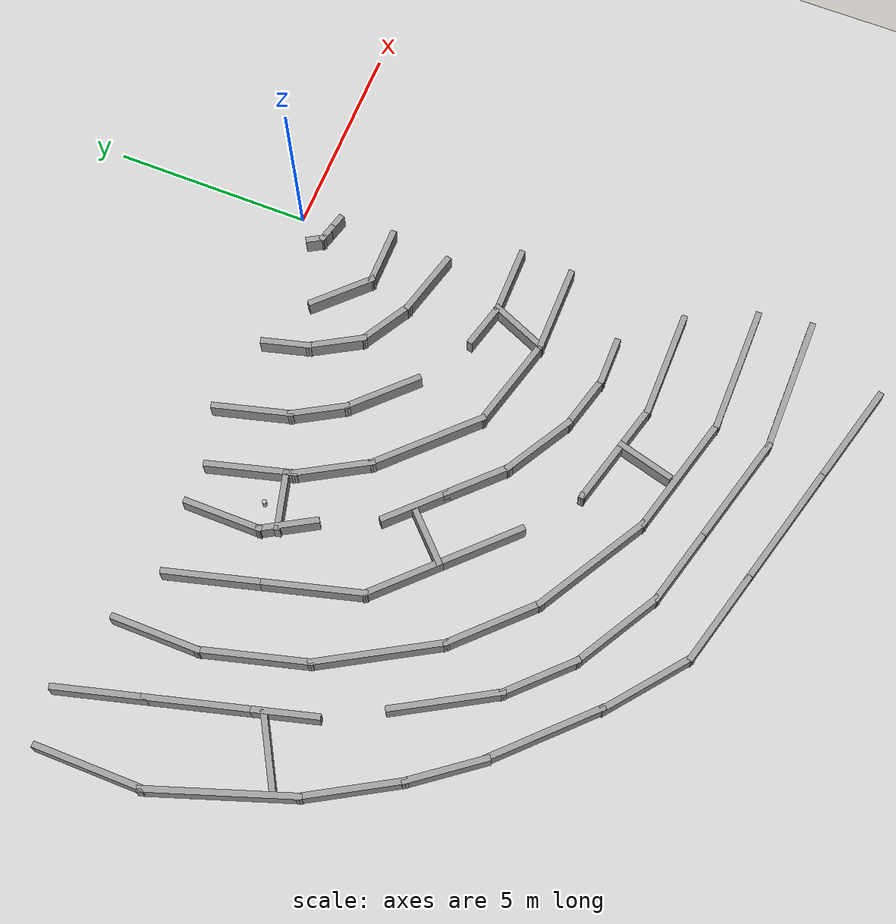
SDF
<sdf version="1.6">
 <world name="default">
  <model name="ground_plane">
   <static>1</static>
   <link name="link">
    <collision name="collision">
     <geometry><plane><normal>0 0 1</normal><size>100 100</size></plane></geometry>
     <surface><friction><ode><mu>100</mu><mu2>50</mu2></ode></friction></surface>
    </collision>
    <visual name="visual">
     <cast_shadows>0</cast_shadows>
     <geometry><plane><normal>0 0 1</normal><size>100 100</size></plane></geometry>
     <material>
      <script><uri>file://media/materials/scripts/gazebo.material</uri><name>Gazebo/Grey</name></script>
     </material>
    </visual>
   </link>
  </model>
  <model name="laby4">
   <pose>-11.3155 -0.151712 0 0 -0 0</pose>
   <link name="Wall_103">
    <collision name="Wall_103_Collision">
     <geometry><box><size>2.25 0.15 0.5</size></box></geometry>
     <pose>0 0 0.25 0 -0 0</pose>
    </collision>
    <visual name="Wall_103_Visual">
     <pose>0 0 0.25 0 -0 0</pose>
     <geometry><box><size>2.25 0.15 0.5</size></box></geometry>
     <material>
      <script><uri>file://media/materials/scripts/gazebo.material</uri><name>Gazebo/Grey</name></script>
      <ambient>1 1 1 1</ambient>
     </material>
    </visual>
    <pose>0.132587 -1.06988 0 0 0 -1.5708</pose>
   </link>
   <link name="Wall_104">
    <collision name="Wall_104_Collision">
     <geometry><box><size>2.75 0.15 0.5</size></box></geometry>
     <pose>0 0 0.25 0 -0 0</pose>
    </collision>
    <visual name="Wall_104_Visual">
     <pose>0 0 0.25 0 -0 0</pose>
     <geometry><box><size>2.75 0.15 0.5</size></box></geometry>
     <material>
      <script><uri>file://media/materials/scripts/gazebo.material</uri><name>Gazebo/Grey</name></script>
      <ambient>1 1 1 1</ambient>
     </material>
    </visual>
    <pose>0.469052 -3.37558 0 0 0 -1.309</pose>
   </link>
   <link name="Wall_106">
    <collision name="Wall_106_Collision">
     <geometry><box><size>3.25 0.15 0.5</size></box></geometry>
     <pose>0 0 0.25 0 -0 0</pose>
    </collision>
    <visual name="Wall_106_Visual">
     <pose>0 0 0.25 0 -0 0</pose>
     <geometry><box><size>3.25 0.15 0.5</size></box></geometry>
     <material>
      <script><uri>file://media/materials/scripts/gazebo.material</uri><name>Gazebo/Grey</name></script>
      <ambient>1 1 1 1</ambient>
     </material>
    </visual>
    <pose>1.58052 -5.97363 0 0 0 -1.0472</pose>
   </link>
   <link name="Wall_107">
    <collision name="Wall_107_Collision">
     <geometry><box><size>2.5 0.15 0.5</size></box></geometry>
     <pose>0 0 0.25 0 -0 0</pose>
    </collision>
    <visual name="Wall_107_Visual">
     <pose>0 0 0.25 0 -0 0</pose>
     <geometry><box><size>2.5 0.15 0.5</size></box></geometry>
     <material>
      <script><uri>file://media/materials/scripts/gazebo.material</uri><name>Gazebo/Grey</name></script>
      <ambient>1 1 1 1</ambient>
     </material>
    </visual>
    <pose>3.18637 -8.14682 0 0 0 -0.785398</pose>
   </link>
   <link name="Wall_108">
    <collision name="Wall_108_Collision">
     <geometry><box><size>3.25 0.15 0.5</size></box></geometry>
     <pose>0 0 0.25 0 -0 0</pose>
    </collision>
    <visual name="Wall_108_Visual">
     <pose>0 0 0.25 0 -0 0</pose>
     <geometry><box><size>3.25 0.15 0.5</size></box></geometry>
     <material>
      <script><uri>file://media/materials/scripts/gazebo.material</uri><name>Gazebo/Grey</name></script>
      <ambient>1 1 1 1</ambient>
     </material>
    </visual>
    <pose>5.35956 -9.75267 0 0 0 -0.523599</pose>
   </link>
   <link name="Wall_109">
    <collision name="Wall_109_Collision">
     <geometry><box><size>3.25 0.15 0.5</size></box></geometry>
     <pose>0 0 0.25 0 -0 0</pose>
    </collision>
    <visual name="Wall_109_Visual">
     <pose>0 0 0.25 0 -0 0</pose>
     <geometry><box><size>3.25 0.15 0.5</size></box></geometry>
     <material>
      <script><uri>file://media/materials/scripts/gazebo.material</uri><name>Gazebo/Grey</name></script>
      <ambient>1 1 1 1</ambient>
     </material>
    </visual>
    <pose>8.19908 -10.9288 0 0 0 -0.261799</pose>
   </link>
   <link name="Wall_110">
    <collision name="Wall_110_Collision">
     <geometry><box><size>3.25 0.15 0.5</size></box></geometry>
     <pose>0 0 0.25 0 -0 0</pose>
    </collision>
    <visual name="Wall_110_Visual">
     <pose>0 0 0.25 0 -0 0</pose>
     <geometry><box><size>3.25 0.15 0.5</size></box></geometry>
     <material>
      <script><uri>file://media/materials/scripts/gazebo.material</uri><name>Gazebo/Grey</name></script>
      <ambient>1 1 1 1</ambient>
     </material>
    </visual>
    <pose>11.2463 -11.33 0 0 -0 0</pose>
   </link>
   <link name="Wall_140">
    <collision name="Wall_140_Collision">
     <geometry><box><size>2.25 0.15 0.5</size></box></geometry>
     <pose>0 0 0.25 0 -0 0</pose>
    </collision>
    <visual name="Wall_140_Visual">
     <pose>0 0 0.25 0 -0 0</pose>
     <geometry><box><size>2.25 0.15 0.5</size></box></geometry>
     <material>
      <script><uri>file://media/materials/scripts/gazebo.material</uri><name>Gazebo/Grey</name></script>
      <ambient>1 1 1 1</ambient>
     </material>
    </visual>
    <pose>4.81018 -7.19725 0 0 -0 2.35619</pose>
   </link>
   <link name="Wall_141">
    <collision name="Wall_141_Collision">
     <geometry><box><size>2 0.15 0.5</size></box></geometry>
     <pose>0 0 0.25 0 -0 0</pose>
    </collision>
    <visual name="Wall_141_Visual">
     <pose>0 0 0.25 0 -0 0</pose>
     <geometry><box><size>2 0.15 0.5</size></box></geometry>
     <material>
      <script><uri>file://media/materials/scripts/gazebo.material</uri><name>Gazebo/Grey</name></script>
      <ambient>1 1 1 1</ambient>
     </material>
    </visual>
    <pose>3.41365 -5.80071 0 0 -0 2.35619</pose>
   </link>
   <link name="Wall_142">
    <collision name="Wall_142_Collision">
     <geometry><box><size>2.5 0.15 0.5</size></box></geometry>
     <pose>0 0 0.25 0 -0 0</pose>
    </collision>
    <visual name="Wall_142_Visual">
     <pose>0 0 0.25 0 -0 0</pose>
     <geometry><box><size>2.5 0.15 0.5</size></box></geometry>
     <material>
      <script><uri>file://media/materials/scripts/gazebo.material</uri><name>Gazebo/Grey</name></script>
      <ambient>1 1 1 1</ambient>
     </material>
    </visual>
    <pose>2.45546 -4.01168 0 0 -0 1.8326</pose>
   </link>
   <link name="Wall_143">
    <collision name="Wall_143_Collision">
     <geometry><box><size>2.5 0.15 0.5</size></box></geometry>
     <pose>0 0 0.25 0 -0 0</pose>
    </collision>
    <visual name="Wall_143_Visual">
     <pose>0 0 0.25 0 -0 0</pose>
     <geometry><box><size>2.5 0.15 0.5</size></box></geometry>
     <material>
      <script><uri>file://media/materials/scripts/gazebo.material</uri><name>Gazebo/Grey</name></script>
      <ambient>1 1 1 1</ambient>
     </material>
    </visual>
    <pose>1.84724 -1.74175 0 0 -0 1.8326</pose>
   </link>
   <link name="Wall_171">
    <collision name="Wall_171_Collision">
     <geometry><box><size>2.75 0.15 0.5</size></box></geometry>
     <pose>0 0 0.25 0 -0 0</pose>
    </collision>
    <visual name="Wall_171_Visual">
     <pose>0 0 0.25 0 -0 0</pose>
     <geometry><box><size>2.75 0.15 0.5</size></box></geometry>
     <material>
      <script><uri>file://media/materials/scripts/gazebo.material</uri><name>Gazebo/Grey</name></script>
      <ambient>1 1 1 1</ambient>
     </material>
    </visual>
    <pose>10.744 -9.67519 0 0 -0 3.14159</pose>
   </link>
   <link name="Wall_172">
    <collision name="Wall_172_Collision">
     <geometry><box><size>1.25 0.15 0.5</size></box></geometry>
     <pose>0 0 0.25 0 -0 0</pose>
    </collision>
    <visual name="Wall_172_Visual">
     <pose>0 0 0.25 0 -0 0</pose>
     <geometry><box><size>1.25 0.15 0.5</size></box></geometry>
     <material>
      <script><uri>file://media/materials/scripts/gazebo.material</uri><name>Gazebo/Grey</name></script>
      <ambient>1 1 1 1</ambient>
     </material>
    </visual>
    <pose>8.91273 -9.53284 0 0 -0 2.87979</pose>
   </link>
   <link name="Wall_173">
    <collision name="Wall_173_Collision">
     <geometry><box><size>1.75 0.15 0.5</size></box></geometry>
     <pose>0 0 0.25 0 -0 0</pose>
    </collision>
    <visual name="Wall_173_Visual">
     <pose>0 0 0.25 0 -0 0</pose>
     <geometry><box><size>1.75 0.15 0.5</size></box></geometry>
     <material>
      <script><uri>file://media/materials/scripts/gazebo.material</uri><name>Gazebo/Grey</name></script>
      <ambient>1 1 1 1</ambient>
     </material>
    </visual>
    <pose>7.60872 -9.18343 0 0 -0 2.87979</pose>
   </link>
   <link name="Wall_174">
    <collision name="Wall_174_Collision">
     <geometry><box><size>0.15 0.15 0.5</size></box></geometry>
     <pose>0 0 0.25 0 -0 0</pose>
    </collision>
    <visual name="Wall_174_Visual">
     <pose>0 0 0.25 0 -0 0</pose>
     <geometry><box><size>0.15 0.15 0.5</size></box></geometry>
     <material>
      <script><uri>file://media/materials/scripts/gazebo.material</uri><name>Gazebo/Grey</name></script>
      <ambient>1 1 1 1</ambient>
     </material>
    </visual>
    <pose>6.83598 -8.97637 0 0 -0 0</pose>
   </link>
   <link name="Wall_176">
    <collision name="Wall_176_Collision">
     <geometry><box><size>1.5 0.15 0.5</size></box></geometry>
     <pose>0 0 0.25 0 -0 0</pose>
    </collision>
    <visual name="Wall_176_Visual">
     <pose>0 0 0.25 0 -0 0</pose>
     <geometry><box><size>1.5 0.15 0.5</size></box></geometry>
     <material>
      <script><uri>file://media/materials/scripts/gazebo.material</uri><name>Gazebo/Grey</name></script>
      <ambient>1 1 1 1</ambient>
     </material>
    </visual>
    <pose>8.20676 -10.0425 0 0 0 -1.8326</pose>
   </link>
   <link name="Wall_205">
    <collision name="Wall_205_Collision">
     <geometry><box><size>2 0.15 0.5</size></box></geometry>
     <pose>0 0 0.25 0 -0 0</pose>
    </collision>
    <visual name="Wall_205_Visual">
     <pose>0 0 0.25 0 -0 0</pose>
     <geometry><box><size>2 0.15 0.5</size></box></geometry>
     <material>
      <script><uri>file://media/materials/scripts/gazebo.material</uri><name>Gazebo/Grey</name></script>
      <ambient>1 1 1 1</ambient>
     </material>
    </visual>
    <pose>3.30115 -1.31346 0 0 0 -1.5708</pose>
   </link>
   <link name="Wall_206">
    <collision name="Wall_206_Collision">
     <geometry><box><size>1.5 0.15 0.5</size></box></geometry>
     <pose>0 0 0.25 0 -0 0</pose>
    </collision>
    <visual name="Wall_206_Visual">
     <pose>0 0 0.25 0 -0 0</pose>
     <geometry><box><size>1.5 0.15 0.5</size></box></geometry>
     <material>
      <script><uri>file://media/materials/scripts/gazebo.material</uri><name>Gazebo/Grey</name></script>
      <ambient>1 1 1 1</ambient>
     </material>
    </visual>
    <pose>3.63865 -2.82302 0 0 0 -1.0472</pose>
   </link>
   <link name="Wall_208">
    <collision name="Wall_208_Collision">
     <geometry><box><size>1.75 0.15 0.5</size></box></geometry>
     <pose>0 0 0.25 0 -0 0</pose>
    </collision>
    <visual name="Wall_208_Visual">
     <pose>0 0 0.25 0 -0 0</pose>
     <geometry><box><size>1.75 0.15 0.5</size></box></geometry>
     <material>
      <script><uri>file://media/materials/scripts/gazebo.material</uri><name>Gazebo/Grey</name></script>
      <ambient>1 1 1 1</ambient>
     </material>
    </visual>
    <pose>5.15602 -5.40121 0 0 0 -0.785398</pose>
   </link>
   <link name="Wall_209">
    <collision name="Wall_209_Collision">
     <geometry><box><size>1.75 0.15 0.5</size></box></geometry>
     <pose>0 0 0.25 0 -0 0</pose>
    </collision>
    <visual name="Wall_209_Visual">
     <pose>0 0 0.25 0 -0 0</pose>
     <geometry><box><size>1.75 0.15 0.5</size></box></geometry>
     <material>
      <script><uri>file://media/materials/scripts/gazebo.material</uri><name>Gazebo/Grey</name></script>
      <ambient>1 1 1 1</ambient>
     </material>
    </visual>
    <pose>6.28739 -6.53258 0 0 0 -0.785398</pose>
   </link>
   <link name="Wall_210">
    <collision name="Wall_210_Collision">
     <geometry><box><size>2 0.15 0.5</size></box></geometry>
     <pose>0 0 0.25 0 -0 0</pose>
    </collision>
    <visual name="Wall_210_Visual">
     <pose>0 0 0.25 0 -0 0</pose>
     <geometry><box><size>2 0.15 0.5</size></box></geometry>
     <material>
      <script><uri>file://media/materials/scripts/gazebo.material</uri><name>Gazebo/Grey</name></script>
      <ambient>1 1 1 1</ambient>
     </material>
    </visual>
    <pose>7.65415 -7.56076 0 0 0 -0.523599</pose>
   </link>
   <link name="Wall_211">
    <collision name="Wall_211_Collision">
     <geometry><box><size>1.5 0.15 0.5</size></box></geometry>
     <pose>0 0 0.25 0 -0 0</pose>
    </collision>
    <visual name="Wall_211_Visual">
     <pose>0 0 0.25 0 -0 0</pose>
     <geometry><box><size>1.5 0.15 0.5</size></box></geometry>
     <material>
      <script><uri>file://media/materials/scripts/gazebo.material</uri><name>Gazebo/Grey</name></script>
      <ambient>1 1 1 1</ambient>
     </material>
    </visual>
    <pose>9.10722 -8.19796 0 0 0 -0.261799</pose>
   </link>
   <link name="Wall_212">
    <collision name="Wall_212_Collision">
     <geometry><box><size>1.25 0.15 0.5</size></box></geometry>
     <pose>0 0 0.25 0 -0 0</pose>
    </collision>
    <visual name="Wall_212_Visual">
     <pose>0 0 0.25 0 -0 0</pose>
     <geometry><box><size>1.25 0.15 0.5</size></box></geometry>
     <material>
      <script><uri>file://media/materials/scripts/gazebo.material</uri><name>Gazebo/Grey</name></script>
      <ambient>1 1 1 1</ambient>
     </material>
    </visual>
    <pose>10.3092 -8.37267 0 0 -0 0</pose>
   </link>
   <link name="Wall_214">
    <collision name="Wall_214_Collision">
     <geometry><box><size>1.5 0.15 0.5</size></box></geometry>
     <pose>0 0 0.25 0 -0 0</pose>
    </collision>
    <visual name="Wall_214_Visual">
     <pose>0 0 0.25 0 -0 0</pose>
     <geometry><box><size>1.5 0.15 0.5</size></box></geometry>
     <material>
      <script><uri>file://media/materials/scripts/gazebo.material</uri><name>Gazebo/Grey</name></script>
      <ambient>1 1 1 1</ambient>
     </material>
    </visual>
    <pose>4.54502 -5.97749 0 0 -0 0.785398</pose>
   </link>
   <link name="Wall_222">
    <collision name="Wall_222_Collision">
     <geometry><box><size>2.25 0.15 0.5</size></box></geometry>
     <pose>0 0 0.25 0 -0 0</pose>
    </collision>
    <visual name="Wall_222_Visual">
     <pose>0 0 0.25 0 -0 0</pose>
     <geometry><box><size>2.25 0.15 0.5</size></box></geometry>
     <material>
      <script><uri>file://media/materials/scripts/gazebo.material</uri><name>Gazebo/Grey</name></script>
      <ambient>1 1 1 1</ambient>
     </material>
    </visual>
    <pose>11.1302 -6.68474 0 0 -0 3.14159</pose>
   </link>
   <link name="Wall_223">
    <collision name="Wall_223_Collision">
     <geometry><box><size>2.5 0.15 0.5</size></box></geometry>
     <pose>0 0 0.25 0 -0 0</pose>
    </collision>
    <visual name="Wall_223_Visual">
     <pose>0 0 0.25 0 -0 0</pose>
     <geometry><box><size>2.5 0.15 0.5</size></box></geometry>
     <material>
      <script><uri>file://media/materials/scripts/gazebo.material</uri><name>Gazebo/Grey</name></script>
      <ambient>1 1 1 1</ambient>
     </material>
    </visual>
    <pose>8.94527 -6.38063 0 0 -0 2.87979</pose>
   </link>
   <link name="Wall_224">
    <collision name="Wall_224_Collision">
     <geometry><box><size>3 0.15 0.5</size></box></geometry>
     <pose>0 0 0.25 0 -0 0</pose>
    </collision>
    <visual name="Wall_224_Visual">
     <pose>0 0 0.25 0 -0 0</pose>
     <geometry><box><size>3 0.15 0.5</size></box></geometry>
     <material>
      <script><uri>file://media/materials/scripts/gazebo.material</uri><name>Gazebo/Grey</name></script>
      <ambient>1 1 1 1</ambient>
     </material>
    </visual>
    <pose>6.80268 -5.06889 0 0 -0 2.35619</pose>
   </link>
   <link name="Wall_225">
    <collision name="Wall_225_Collision">
     <geometry><box><size>2 0.15 0.5</size></box></geometry>
     <pose>0 0 0.25 0 -0 0</pose>
    </collision>
    <visual name="Wall_225_Visual">
     <pose>0 0 0.25 0 -0 0</pose>
     <geometry><box><size>2 0.15 0.5</size></box></geometry>
     <material>
      <script><uri>file://media/materials/scripts/gazebo.material</uri><name>Gazebo/Grey</name></script>
      <ambient>1 1 1 1</ambient>
     </material>
    </visual>
    <pose>5.33256 -3.26019 0 0 -0 2.0944</pose>
   </link>
   <link name="Wall_226">
    <collision name="Wall_226_Collision">
     <geometry><box><size>2.25 0.15 0.5</size></box></geometry>
     <pose>0 0 0.25 0 -0 0</pose>
    </collision>
    <visual name="Wall_226_Visual">
     <pose>0 0 0.25 0 -0 0</pose>
     <geometry><box><size>2.25 0.15 0.5</size></box></geometry>
     <material>
      <script><uri>file://media/materials/scripts/gazebo.material</uri><name>Gazebo/Grey</name></script>
      <ambient>1 1 1 1</ambient>
     </material>
    </visual>
    <pose>4.5983 -1.4449 0 0 -0 1.8326</pose>
   </link>
   <link name="Wall_23">
    <collision name="Wall_23_Collision">
     <geometry><box><size>2.75 0.15 0.5</size></box></geometry>
     <pose>0 0 0.25 0 -0 0</pose>
    </collision>
    <visual name="Wall_23_Visual">
     <pose>0 0 0.25 0 -0 0</pose>
     <geometry><box><size>2.75 0.15 0.5</size></box></geometry>
     <material>
      <script><uri>file://media/materials/scripts/gazebo.material</uri><name>Gazebo/Grey</name></script>
      <ambient>1 1 1 1</ambient>
     </material>
    </visual>
    <pose>10.5983 -14.3724 0 0 -0 2.87979</pose>
   </link>
   <link name="Wall_24">
    <collision name="Wall_24_Collision">
     <geometry><box><size>3.25 0.15 0.5</size></box></geometry>
     <pose>0 0 0.25 0 -0 0</pose>
    </collision>
    <visual name="Wall_24_Visual">
     <pose>0 0 0.25 0 -0 0</pose>
     <geometry><box><size>3.25 0.15 0.5</size></box></geometry>
     <material>
      <script><uri>file://media/materials/scripts/gazebo.material</uri><name>Gazebo/Grey</name></script>
      <ambient>1 1 1 1</ambient>
     </material>
    </visual>
    <pose>7.84544 -13.6347 0 0 -0 2.87979</pose>
   </link>
   <link name="Wall_245">
    <collision name="Wall_245_Collision">
     <geometry><box><size>1.5 0.15 0.5</size></box></geometry>
     <pose>0 0 0.25 0 -0 0</pose>
    </collision>
    <visual name="Wall_245_Visual">
     <pose>0 0 0.25 0 -0 0</pose>
     <geometry><box><size>1.5 0.15 0.5</size></box></geometry>
     <material>
      <script><uri>file://media/materials/scripts/gazebo.material</uri><name>Gazebo/Grey</name></script>
      <ambient>1 1 1 1</ambient>
     </material>
    </visual>
    <pose>4.13833 -2.45282 0 0 -0 0.261799</pose>
   </link>
   <link name="Wall_247">
    <collision name="Wall_247_Collision">
     <geometry><box><size>2 0.15 0.5</size></box></geometry>
     <pose>0 0 0.25 0 -0 0</pose>
    </collision>
    <visual name="Wall_247_Visual">
     <pose>0 0 0.25 0 -0 0</pose>
     <geometry><box><size>2 0.15 0.5</size></box></geometry>
     <material>
      <script><uri>file://media/materials/scripts/gazebo.material</uri><name>Gazebo/Grey</name></script>
      <ambient>1 1 1 1</ambient>
     </material>
    </visual>
    <pose>7.55461 -3.59116 0 0 -0 2.35619</pose>
   </link>
   <link name="Wall_248">
    <collision name="Wall_248_Collision">
     <geometry><box><size>1.5 0.15 0.5</size></box></geometry>
     <pose>0 0 0.25 0 -0 0</pose>
    </collision>
    <visual name="Wall_248_Visual">
     <pose>0 0 0.25 0 -0 0</pose>
     <geometry><box><size>1.5 0.15 0.5</size></box></geometry>
     <material>
      <script><uri>file://media/materials/scripts/gazebo.material</uri><name>Gazebo/Grey</name></script>
      <ambient>1 1 1 1</ambient>
     </material>
    </visual>
    <pose>6.56304 -2.35251 0 0 -0 2.0944</pose>
   </link>
   <link name="Wall_249">
    <collision name="Wall_249_Collision">
     <geometry><box><size>2 0.15 0.5</size></box></geometry>
     <pose>0 0 0.25 0 -0 0</pose>
    </collision>
    <visual name="Wall_249_Visual">
     <pose>0 0 0.25 0 -0 0</pose>
     <geometry><box><size>2 0.15 0.5</size></box></geometry>
     <material>
      <script><uri>file://media/materials/scripts/gazebo.material</uri><name>Gazebo/Grey</name></script>
      <ambient>1 1 1 1</ambient>
     </material>
    </visual>
    <pose>5.98613 -0.874466 0 0 -0 1.8326</pose>
   </link>
   <link name="Wall_25">
    <collision name="Wall_25_Collision">
     <geometry><box><size>2.5 0.15 0.5</size></box></geometry>
     <pose>0 0 0.25 0 -0 0</pose>
    </collision>
    <visual name="Wall_25_Visual">
     <pose>0 0 0.25 0 -0 0</pose>
     <geometry><box><size>2.5 0.15 0.5</size></box></geometry>
     <material>
      <script><uri>file://media/materials/scripts/gazebo.material</uri><name>Gazebo/Grey</name></script>
      <ambient>1 1 1 1</ambient>
     </material>
    </visual>
    <pose>5.2133 -12.9295 0 0 -0 2.87979</pose>
   </link>
   <link name="Wall_26">
    <collision name="Wall_26_Collision">
     <geometry><box><size>2.47717 0.15 0.5</size></box></geometry>
     <pose>0 0 0.25 0 -0 0</pose>
    </collision>
    <visual name="Wall_26_Visual">
     <pose>0 0 0.25 0 -0 0</pose>
     <geometry><box><size>2.47717 0.15 0.5</size></box></geometry>
     <material>
      <script><uri>file://media/materials/scripts/gazebo.material</uri><name>Gazebo/Grey</name></script>
      <ambient>1 1 1 1</ambient>
     </material>
    </visual>
    <pose>3.16591 -11.9033 0 0 -0 2.47212</pose>
   </link>
   <link name="Wall_265">
    <collision name="Wall_265_Collision">
     <geometry><box><size>1.75 0.15 0.5</size></box></geometry>
     <pose>0 0 0.25 0 -0 0</pose>
    </collision>
    <visual name="Wall_265_Visual">
     <pose>0 0 0.25 0 -0 0</pose>
     <geometry><box><size>1.75 0.15 0.5</size></box></geometry>
     <material>
      <script><uri>file://media/materials/scripts/gazebo.material</uri><name>Gazebo/Grey</name></script>
      <ambient>1 1 1 1</ambient>
     </material>
    </visual>
    <pose>11.4468 -5.35996 0 0 -0 3.14159</pose>
   </link>
   <link name="Wall_266">
    <collision name="Wall_266_Collision">
     <geometry><box><size>1.25 0.15 0.5</size></box></geometry>
     <pose>0 0 0.25 0 -0 0</pose>
    </collision>
    <visual name="Wall_266_Visual">
     <pose>0 0 0.25 0 -0 0</pose>
     <geometry><box><size>1.25 0.15 0.5</size></box></geometry>
     <material>
      <script><uri>file://media/materials/scripts/gazebo.material</uri><name>Gazebo/Grey</name></script>
      <ambient>1 1 1 1</ambient>
     </material>
    </visual>
    <pose>10.1156 -5.21761 0 0 -0 2.87979</pose>
   </link>
   <link name="Wall_268">
    <collision name="Wall_268_Collision">
     <geometry><box><size>1.59087 0.15 0.5</size></box></geometry>
     <pose>0 0 0.25 0 -0 0</pose>
    </collision>
    <visual name="Wall_268_Visual">
     <pose>0 0 0.25 0 -0 0</pose>
     <geometry><box><size>1.59087 0.15 0.5</size></box></geometry>
     <material>
      <script><uri>file://media/materials/scripts/gazebo.material</uri><name>Gazebo/Grey</name></script>
      <ambient>1 1 1 1</ambient>
     </material>
    </visual>
    <pose>10.3635 -6.02235 0 0 0 -1.97494</pose>
   </link>
   <link name="Wall_27">
    <collision name="Wall_27_Collision">
     <geometry><box><size>3 0.15 0.5</size></box></geometry>
     <pose>0 0 0.25 0 -0 0</pose>
    </collision>
    <visual name="Wall_27_Visual">
     <pose>0 0 0.25 0 -0 0</pose>
     <geometry><box><size>3 0.15 0.5</size></box></geometry>
     <material>
      <script><uri>file://media/materials/scripts/gazebo.material</uri><name>Gazebo/Grey</name></script>
      <ambient>1 1 1 1</ambient>
     </material>
    </visual>
    <pose>1.24586 -10.1464 0 0 -0 2.35619</pose>
   </link>
   <link name="Wall_271">
    <collision name="Wall_271_Collision">
     <geometry><box><size>1.75 0.15 0.5</size></box></geometry>
     <pose>0 0 0.25 0 -0 0</pose>
    </collision>
    <visual name="Wall_271_Visual">
     <pose>0 0 0.25 0 -0 0</pose>
     <geometry><box><size>1.75 0.15 0.5</size></box></geometry>
     <material>
      <script><uri>file://media/materials/scripts/gazebo.material</uri><name>Gazebo/Grey</name></script>
      <ambient>1 1 1 1</ambient>
     </material>
    </visual>
    <pose>10.6359 -3.50484 0 0 -0 2.87979</pose>
   </link>
   <link name="Wall_272">
    <collision name="Wall_272_Collision">
     <geometry><box><size>1.5 0.15 0.5</size></box></geometry>
     <pose>0 0 0.25 0 -0 0</pose>
    </collision>
    <visual name="Wall_272_Visual">
     <pose>0 0 0.25 0 -0 0</pose>
     <geometry><box><size>1.5 0.15 0.5</size></box></geometry>
     <material>
      <script><uri>file://media/materials/scripts/gazebo.material</uri><name>Gazebo/Grey</name></script>
      <ambient>1 1 1 1</ambient>
     </material>
    </visual>
    <pose>9.27863 -2.96029 0 0 -0 2.61799</pose>
   </link>
   <link name="Wall_273">
    <collision name="Wall_273_Collision">
     <geometry><box><size>1.5 0.15 0.5</size></box></geometry>
     <pose>0 0 0.25 0 -0 0</pose>
    </collision>
    <visual name="Wall_273_Visual">
     <pose>0 0 0.25 0 -0 0</pose>
     <geometry><box><size>1.5 0.15 0.5</size></box></geometry>
     <material>
      <script><uri>file://media/materials/scripts/gazebo.material</uri><name>Gazebo/Grey</name></script>
      <ambient>1 1 1 1</ambient>
     </material>
    </visual>
    <pose>8.35657 -2.03822 0 0 -0 2.0944</pose>
   </link>
   <link name="Wall_274">
    <collision name="Wall_274_Collision">
     <geometry><box><size>1.25 0.15 0.5</size></box></geometry>
     <pose>0 0 0.25 0 -0 0</pose>
    </collision>
    <visual name="Wall_274_Visual">
     <pose>0 0 0.25 0 -0 0</pose>
     <geometry><box><size>1.25 0.15 0.5</size></box></geometry>
     <material>
      <script><uri>file://media/materials/scripts/gazebo.material</uri><name>Gazebo/Grey</name></script>
      <ambient>1 1 1 1</ambient>
     </material>
    </visual>
    <pose>7.87672 -0.922392 0 0 -0 1.8326</pose>
   </link>
   <link name="Wall_28">
    <collision name="Wall_28_Collision">
     <geometry><box><size>2.05754 0.15 0.5</size></box></geometry>
     <pose>0 0 0.25 0 -0 0</pose>
    </collision>
    <visual name="Wall_28_Visual">
     <pose>0 0 0.25 0 -0 0</pose>
     <geometry><box><size>2.05754 0.15 0.5</size></box></geometry>
     <material>
      <script><uri>file://media/materials/scripts/gazebo.material</uri><name>Gazebo/Grey</name></script>
      <ambient>1 1 1 1</ambient>
     </material>
    </visual>
    <pose>-0.33427 -8.40309 0 0 -0 2.21461</pose>
   </link>
   <link name="Wall_29">
    <collision name="Wall_29_Collision">
     <geometry><box><size>2.5 0.15 0.5</size></box></geometry>
     <pose>0 0 0.25 0 -0 0</pose>
    </collision>
    <visual name="Wall_29_Visual">
     <pose>0 0 0.25 0 -0 0</pose>
     <geometry><box><size>2.5 0.15 0.5</size></box></geometry>
     <material>
      <script><uri>file://media/materials/scripts/gazebo.material</uri><name>Gazebo/Grey</name></script>
      <ambient>1 1 1 1</ambient>
     </material>
    </visual>
    <pose>-1.49427 -6.62267 0 0 -0 2.0944</pose>
   </link>
   <link name="Wall_295">
    <collision name="Wall_295_Collision">
     <geometry><box><size>1.5 0.15 0.5</size></box></geometry>
     <pose>0 0 0.25 0 -0 0</pose>
    </collision>
    <visual name="Wall_295_Visual">
     <pose>0 0 0.25 0 -0 0</pose>
     <geometry><box><size>1.5 0.15 0.5</size></box></geometry>
     <material>
      <script><uri>file://media/materials/scripts/gazebo.material</uri><name>Gazebo/Grey</name></script>
      <ambient>1 1 1 1</ambient>
     </material>
    </visual>
    <pose>10.9069 -2.18939 0 0 -0 3.14159</pose>
   </link>
   <link name="Wall_296">
    <collision name="Wall_296_Collision">
     <geometry><box><size>1.75 0.15 0.5</size></box></geometry>
     <pose>0 0 0.25 0 -0 0</pose>
    </collision>
    <visual name="Wall_296_Visual">
     <pose>0 0 0.25 0 -0 0</pose>
     <geometry><box><size>1.75 0.15 0.5</size></box></geometry>
     <material>
      <script><uri>file://media/materials/scripts/gazebo.material</uri><name>Gazebo/Grey</name></script>
      <ambient>1 1 1 1</ambient>
     </material>
    </visual>
    <pose>9.66618 -1.6237 0 0 -0 2.35619</pose>
   </link>
   <link name="Wall_30">
    <collision name="Wall_30_Collision">
     <geometry><box><size>3.68323 0.15 0.5</size></box></geometry>
     <pose>0 0 0.25 0 -0 0</pose>
    </collision>
    <visual name="Wall_30_Visual">
     <pose>0 0 0.25 0 -0 0</pose>
     <geometry><box><size>3.68323 0.15 0.5</size></box></geometry>
     <material>
      <script><uri>file://media/materials/scripts/gazebo.material</uri><name>Gazebo/Grey</name></script>
      <ambient>1 1 1 1</ambient>
     </material>
    </visual>
    <pose>-2.65125 -3.93278 0 0 -0 1.89901</pose>
   </link>
   <link name="Wall_31">
    <collision name="Wall_31_Collision">
     <geometry><box><size>2.75 0.15 0.5</size></box></geometry>
     <pose>0 0 0.25 0 -0 0</pose>
    </collision>
    <visual name="Wall_31_Visual">
     <pose>0 0 0.25 0 -0 0</pose>
     <geometry><box><size>2.75 0.15 0.5</size></box></geometry>
     <material>
      <script><uri>file://media/materials/scripts/gazebo.material</uri><name>Gazebo/Grey</name></script>
      <ambient>1 1 1 1</ambient>
     </material>
    </visual>
    <pose>-3.19353 -0.987661 0 0 -0 1.5708</pose>
   </link>
   <link name="Wall_316">
    <collision name="Wall_316_Collision">
     <geometry><box><size>0.5 0.15 0.5</size></box></geometry>
     <pose>0 0 0.25 0 -0 0</pose>
    </collision>
    <visual name="Wall_316_Visual">
     <pose>0 0 0.25 0 -0 0</pose>
     <geometry><box><size>0.5 0.15 0.5</size></box></geometry>
     <material>
      <script><uri>file://media/materials/scripts/gazebo.material</uri><name>Gazebo/Grey</name></script>
      <ambient>1 1 1 1</ambient>
     </material>
    </visual>
    <pose>11.3399 -0.757865 0 0 -0 2.87979</pose>
   </link>
   <link name="Wall_317">
    <collision name="Wall_317_Collision">
     <geometry><box><size>0.5 0.15 0.5</size></box></geometry>
     <pose>0 0 0.25 0 -0 0</pose>
    </collision>
    <visual name="Wall_317_Visual">
     <pose>0 0 0.25 0 -0 0</pose>
     <geometry><box><size>0.5 0.15 0.5</size></box></geometry>
     <material>
      <script><uri>file://media/materials/scripts/gazebo.material</uri><name>Gazebo/Grey</name></script>
      <ambient>1 1 1 1</ambient>
     </material>
    </visual>
    <pose>11.0019 -0.667278 0 0 -0 2.87979</pose>
   </link>
   <link name="Wall_318">
    <collision name="Wall_318_Collision">
     <geometry><box><size>0.5 0.15 0.5</size></box></geometry>
     <pose>0 0 0.25 0 -0 0</pose>
    </collision>
    <visual name="Wall_318_Visual">
     <pose>0 0 0.25 0 -0 0</pose>
     <geometry><box><size>0.5 0.15 0.5</size></box></geometry>
     <material>
      <script><uri>file://media/materials/scripts/gazebo.material</uri><name>Gazebo/Grey</name></script>
      <ambient>1 1 1 1</ambient>
     </material>
    </visual>
    <pose>10.7453 -0.470431 0 0 -0 2.0944</pose>
   </link>
   <link name="Wall_48">
    <collision name="Wall_48_Collision">
     <geometry><box><size>2.75 0.15 0.5</size></box></geometry>
     <pose>0 0 0.25 0 -0 0</pose>
    </collision>
    <visual name="Wall_48_Visual">
     <pose>0 0 0.25 0 -0 0</pose>
     <geometry><box><size>2.75 0.15 0.5</size></box></geometry>
     <material>
      <script><uri>file://media/materials/scripts/gazebo.material</uri><name>Gazebo/Grey</name></script>
      <ambient>1 1 1 1</ambient>
     </material>
    </visual>
    <pose>1.11734 -7.81613 0 0 0 -1.0472</pose>
   </link>
   <link name="Wall_49">
    <collision name="Wall_49_Collision">
     <geometry><box><size>2 0.15 0.5</size></box></geometry>
     <pose>0 0 0.25 0 -0 0</pose>
    </collision>
    <visual name="Wall_49_Visual">
     <pose>0 0 0.25 0 -0 0</pose>
     <geometry><box><size>2 0.15 0.5</size></box></geometry>
     <material>
      <script><uri>file://media/materials/scripts/gazebo.material</uri><name>Gazebo/Grey</name></script>
      <ambient>1 1 1 1</ambient>
     </material>
    </visual>
    <pose>2.42142 -9.59604 0 0 0 -0.785398</pose>
   </link>
   <link name="Wall_50">
    <collision name="Wall_50_Collision">
     <geometry><box><size>2.5 0.15 0.5</size></box></geometry>
     <pose>0 0 0.25 0 -0 0</pose>
    </collision>
    <visual name="Wall_50_Visual">
     <pose>0 0 0.25 0 -0 0</pose>
     <geometry><box><size>2.5 0.15 0.5</size></box></geometry>
     <material>
      <script><uri>file://media/materials/scripts/gazebo.material</uri><name>Gazebo/Grey</name></script>
      <ambient>1 1 1 1</ambient>
     </material>
    </visual>
    <pose>4.09307 -10.8376 0 0 0 -0.523599</pose>
   </link>
   <link name="Wall_51">
    <collision name="Wall_51_Collision">
     <geometry><box><size>2 0.15 0.5</size></box></geometry>
     <pose>0 0 0.25 0 -0 0</pose>
    </collision>
    <visual name="Wall_51_Visual">
     <pose>0 0 0.25 0 -0 0</pose>
     <geometry><box><size>2 0.15 0.5</size></box></geometry>
     <material>
      <script><uri>file://media/materials/scripts/gazebo.material</uri><name>Gazebo/Grey</name></script>
      <ambient>1 1 1 1</ambient>
     </material>
    </visual>
    <pose>6.00413 -11.6645 0 0 0 -0.261799</pose>
   </link>
   <link name="Wall_52">
    <collision name="Wall_52_Collision">
     <geometry><box><size>3 0.15 0.5</size></box></geometry>
     <pose>0 0 0.25 0 -0 0</pose>
    </collision>
    <visual name="Wall_52_Visual">
     <pose>0 0 0.25 0 -0 0</pose>
     <geometry><box><size>3 0.15 0.5</size></box></geometry>
     <material>
      <script><uri>file://media/materials/scripts/gazebo.material</uri><name>Gazebo/Grey</name></script>
      <ambient>1 1 1 1</ambient>
     </material>
    </visual>
    <pose>8.27406 -12.2727 0 0 0 -0.261799</pose>
   </link>
   <link name="Wall_53">
    <collision name="Wall_53_Collision">
     <geometry><box><size>3.5 0.15 0.5</size></box></geometry>
     <pose>0 0 0.25 0 -0 0</pose>
    </collision>
    <visual name="Wall_53_Visual">
     <pose>0 0 0.25 0 -0 0</pose>
     <geometry><box><size>3.5 0.15 0.5</size></box></geometry>
     <material>
      <script><uri>file://media/materials/scripts/gazebo.material</uri><name>Gazebo/Grey</name></script>
      <ambient>1 1 1 1</ambient>
     </material>
    </visual>
    <pose>11.3255 -12.6416 0 0 -0 0</pose>
   </link>
   <link name="Wall_88">
    <collision name="Wall_88_Collision">
     <geometry><box><size>2.25 0.15 0.5</size></box></geometry>
     <pose>0 0 0.25 0 -0 0</pose>
    </collision>
    <visual name="Wall_88_Visual">
     <pose>0 0 0.25 0 -0 0</pose>
     <geometry><box><size>2.25 0.15 0.5</size></box></geometry>
     <material>
      <script><uri>file://media/materials/scripts/gazebo.material</uri><name>Gazebo/Grey</name></script>
      <ambient>1 1 1 1</ambient>
     </material>
    </visual>
    <pose>-1.58414 -0.451934 0 0 0 -1.309</pose>
   </link>
   <link name="Wall_89">
    <collision name="Wall_89_Collision">
     <geometry><box><size>2.5 0.15 0.5</size></box></geometry>
     <pose>0 0 0.25 0 -0 0</pose>
    </collision>
    <visual name="Wall_89_Visual">
     <pose>0 0 0.25 0 -0 0</pose>
     <geometry><box><size>2.5 0.15 0.5</size></box></geometry>
     <material>
      <script><uri>file://media/materials/scripts/gazebo.material</uri><name>Gazebo/Grey</name></script>
      <ambient>1 1 1 1</ambient>
     </material>
    </visual>
    <pose>-1.00826 -2.60112 0 0 0 -1.309</pose>
   </link>
   <link name="Wall_90">
    <collision name="Wall_90_Collision">
     <geometry><box><size>1.75 0.15 0.5</size></box></geometry>
     <pose>0 0 0.25 0 -0 0</pose>
    </collision>
    <visual name="Wall_90_Visual">
     <pose>0 0 0.25 0 -0 0</pose>
     <geometry><box><size>1.75 0.15 0.5</size></box></geometry>
     <material>
      <script><uri>file://media/materials/scripts/gazebo.material</uri><name>Gazebo/Grey</name></script>
      <ambient>1 1 1 1</ambient>
     </material>
    </visual>
    <pose>-0.497098 -4.50882 0 0 0 -1.309</pose>
   </link>
   <link name="Wall_92">
    <collision name="Wall_92_Collision">
     <geometry><box><size>2 0.15 0.5</size></box></geometry>
     <pose>0 0 0.25 0 -0 0</pose>
    </collision>
    <visual name="Wall_92_Visual">
     <pose>0 0 0.25 0 -0 0</pose>
     <geometry><box><size>2 0.15 0.5</size></box></geometry>
     <material>
      <script><uri>file://media/materials/scripts/gazebo.material</uri><name>Gazebo/Grey</name></script>
      <ambient>1 1 1 1</ambient>
     </material>
    </visual>
    <pose>-1.43978 -4.57832 0 0 -0 0.523599</pose>
   </link>
   <static>1</static>
  </model>
  <model name="beer">
   <link name="link">
    <pose>0 0 0.115 0 -0 0</pose>
    <inertial>
     <mass>0.39</mass>
     <inertia><ixx>0.00058</ixx><ixy>0</ixy><ixz>0</ixz><iyy>0.00058</iyy><iyz>0</iyz><izz>0.00019</izz></inertia>
    </inertial>
    <collision name="collision">
     <geometry><cylinder><radius>0.055</radius><length>0.23</length></cylinder></geometry>
    </collision>
    <visual name="visual">
     <geometry><cylinder><radius>0.055</radius><length>0.23</length></cylinder></geometry>
     <material>
      <script>
       <uri>model://beer/materials/scripts</uri>
       <uri>model://beer/materials/textures</uri>
       <name>Beer/Diffuse</name>
      </script>
     </material>
    </visual>
   </link>
   <pose>-7.29014 -2.18375 -2e-06 1e-06 -0 -1e-06</pose>
  </model>
 </world>
</sdf>
